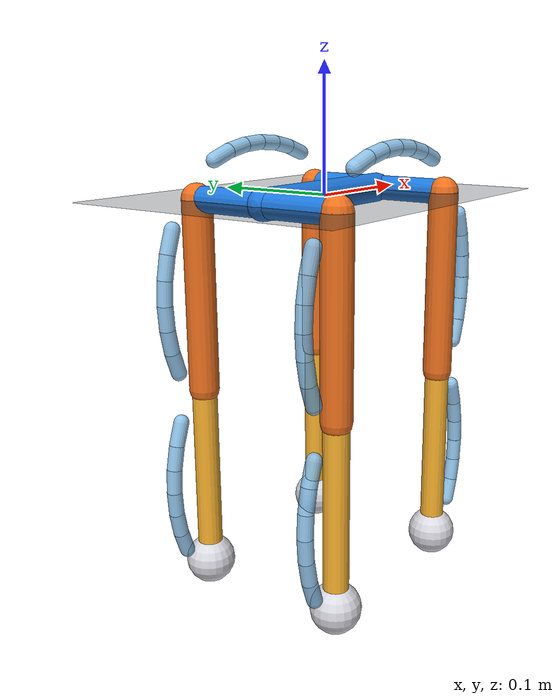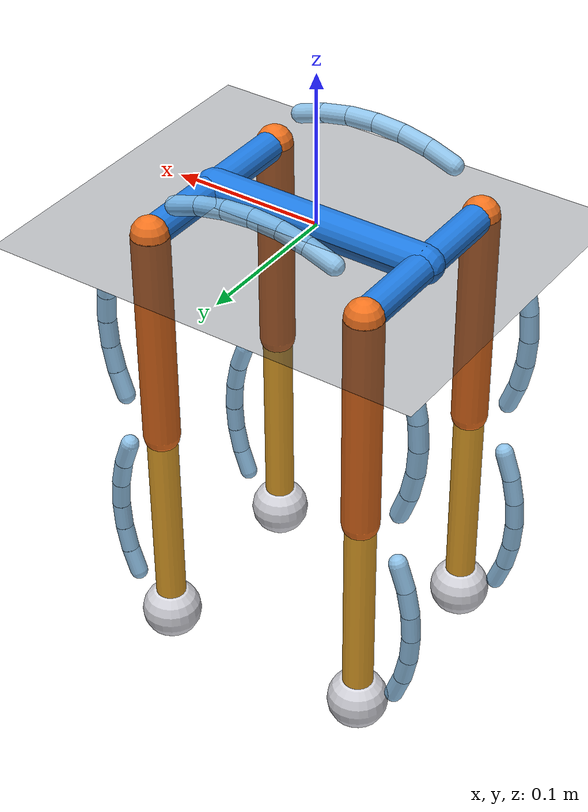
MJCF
<mujoco model="curl_robot_3d">

  <compiler angle="radian" autolimits="true"/>
  <option timestep="0.001" gravity="0 0 -9.81"
          integrator="implicitfast" cone="elliptic"
          iterations="20" ls_iterations="10"/>

  <visual>
    <global azimuth="120" elevation="-12" offwidth="960" offheight="720"/>
    <headlight ambient="0.35 0.35 0.35"
               diffuse="0.65 0.65 0.65"
               specular="0.20 0.20 0.20"/>
  </visual>

  <asset>
    <texture type="skybox" builtin="gradient" rgb1=".18 .23 .30"
             rgb2=".02 .03 .05" width="512" height="512"/>
    <texture name="grid" type="2d" builtin="checker" width="512"
             height="512" rgb1=".18 .22 .27" rgb2=".10 .13 .17"/>
    <material name="ground" texture="grid" texrepeat="1 1"
              texuniform="true" reflectance="0.05"/>
  </asset>

  <default>
    <joint limited="true"/>
    <geom contype="0" conaffinity="1" condim="3"
          friction="0.8 0.02 0.01"
          solref="0.01 1" solimp="0.9 0.95 0.001"/>
    <default class="single_hip_joint">
      <joint damping="0.01"
             armature="0.0016"
             range="-1.12 2.41"/>
    </default>
    <default class="single_knee_joint">
      <joint damping="0.01"
             armature="0.0016"
             range="-0.61 2.69"/>
    </default>
    <default class="single_servo">
      <general forcelimited="true"
               forcerange="-3 3"
               ctrllimited="true"
               gainprm="5 0 0"
               biastype="affine"
               biasprm="0 -5 -0.1"/>
    </default>
    <default class="rolling_shell">
      <geom type="capsule" size="0.006"
            contype="4" conaffinity="7"
            solref="0.003 1" solimp="0.95 0.99 0.001"
            group="1" rgba="0.55 0.78 0.95 0.88"/>
    </default>
    <default class="structure_collision">
      <geom contype="2" conaffinity="7"
            solref="0.003 1" solimp="0.95 0.99 0.001"/>
    </default>
  </default>

  <worldbody>
    <light name="key" directional="true" castshadow="true"
           pos="-1 -2 4" dir="0.25 0.15 -1"
           diffuse="0.85 0.85 0.82" specular="0.20 0.20 0.20"/>
    <light name="fill" directional="true" castshadow="false"
           pos="1 2 3" dir="-0.20 -0.30 -1"
           diffuse="0.30 0.36 0.45" specular="0.05 0.05 0.05"/>
    <camera name="tracking" mode="targetbody" target="torso"
            pos="0.45 -0.55 0.35"/>
    <geom name="floor" type="plane" size="12 6 0.05"
          contype="1" conaffinity="1" material="ground"/>

    <body name="torso" pos="0 0 0">
      <freejoint name="root"/>
      <inertial pos="0.025 0 0.015"
                mass="1.506"
                diaginertia="0.002042720378 0.0085 0.0085"/>
      <geom name="torso_spine_proxy" type="capsule"
            class="structure_collision"
            fromto="-0.075 0 0 0.075 0 0"
            size="0.012"
            rgba="0.12 0.48 0.88 1"/>
      <geom name="front_crossbar_proxy" type="capsule"
            class="structure_collision"
            fromto="0.075 -0.06379 0 0.075 0.06379 0"
            size="0.01"
            rgba="0.12 0.48 0.88 1"/>
      <geom name="rear_crossbar_proxy" type="capsule"
            class="structure_collision"
            fromto="-0.075 -0.06379 0 -0.075 0.06379 0"
            size="0.01"
            rgba="0.12 0.48 0.88 1"/>
      <geom name="torso_left_shell_00" class="rolling_shell"
            fromto="-0.055 0.06379 0.02719654173 -0.03721561714 0.06379 0.03333902023"/>
      <geom name="torso_left_shell_01" class="rolling_shell"
            fromto="-0.03721561714 0.06379 0.03333902023 -0.01877366594 0.06379 0.03706846409"/>
      <geom name="torso_left_shell_02" class="rolling_shell"
            fromto="-0.01877366594 0.06379 0.03706846409 0 0.06379 0.03831897722"/>
      <geom name="torso_left_shell_03" class="rolling_shell"
            fromto="0 0.06379 0.03831897722 0.01877366594 0.06379 0.03706846409"/>
      <geom name="torso_left_shell_04" class="rolling_shell"
            fromto="0.01877366594 0.06379 0.03706846409 0.03721561714 0.06379 0.03333902023"/>
      <geom name="torso_left_shell_05" class="rolling_shell"
            fromto="0.03721561714 0.06379 0.03333902023 0.055 0.06379 0.02719654173"/>
      <geom name="torso_right_shell_00" class="rolling_shell"
            fromto="-0.055 -0.06379 0.02719654173 -0.03721561714 -0.06379 0.03333902023"/>
      <geom name="torso_right_shell_01" class="rolling_shell"
            fromto="-0.03721561714 -0.06379 0.03333902023 -0.01877366594 -0.06379 0.03706846409"/>
      <geom name="torso_right_shell_02" class="rolling_shell"
            fromto="-0.01877366594 -0.06379 0.03706846409 0 -0.06379 0.03831897722"/>
      <geom name="torso_right_shell_03" class="rolling_shell"
            fromto="0 -0.06379 0.03831897722 0.01877366594 -0.06379 0.03706846409"/>
      <geom name="torso_right_shell_04" class="rolling_shell"
            fromto="0.01877366594 -0.06379 0.03706846409 0.03721561714 -0.06379 0.03333902023"/>
      <geom name="torso_right_shell_05" class="rolling_shell"
            fromto="0.03721561714 -0.06379 0.03333902023 0.055 -0.06379 0.02719654173"/>

      <body name="front_left_thigh" pos="0.075 0.06379 0">
        <joint name="front_left_hip" type="hinge" axis="0 -1 0"
               class="single_hip_joint"/>
        <inertial pos="0 0 -0.0573059111"
                  mass="0.366"
                  diaginertia="0.0013365 0.0013365 0.0001"/>
        <geom name="front_left_thigh_proxy" type="capsule"
              class="structure_collision"
              fromto="0 0 0 0 0 -0.15"
              size="0.012"
              rgba="0.95 0.45 0.12 1"/>
        <geom name="front_left_thigh_shell_00" class="rolling_shell"
              fromto="0.02719654173 0 -0.02 0.03333902023 0 -0.03778438286"/>
        <geom name="front_left_thigh_shell_01" class="rolling_shell"
              fromto="0.03333902023 0 -0.03778438286 0.03706846409 0 -0.05622633406"/>
        <geom name="front_left_thigh_shell_02" class="rolling_shell"
              fromto="0.03706846409 0 -0.05622633406 0.03831897722 0 -0.075"/>
        <geom name="front_left_thigh_shell_03" class="rolling_shell"
              fromto="0.03831897722 0 -0.075 0.03706846409 0 -0.09377366594"/>
        <geom name="front_left_thigh_shell_04" class="rolling_shell"
              fromto="0.03706846409 0 -0.09377366594 0.03333902023 0 -0.1122156171"/>
        <geom name="front_left_thigh_shell_05" class="rolling_shell"
              fromto="0.03333902023 0 -0.1122156171 0.02719654173 0 -0.13"/>
        <body name="front_left_shank" pos="0 0 -0.15">
          <joint name="front_left_knee" type="hinge" axis="0 1 0"
                 class="single_knee_joint"/>
          <inertial pos="0 0 -0.0897967059"
                    mass="0.05"
                    diaginertia="7.75375e-05 7.75375e-05 2e-05"/>
          <geom name="front_left_shank_proxy" type="capsule"
                class="structure_collision"
                fromto="0 0 0 0 0 -0.15"
                size="0.01"
                rgba="0.98 0.70 0.18 1"/>
          <geom name="front_left_shank_shell_00" class="rolling_shell"
                fromto="0.02719654173 0 -0.02 0.03333902023 0 -0.03778438286"/>
          <geom name="front_left_shank_shell_01" class="rolling_shell"
                fromto="0.03333902023 0 -0.03778438286 0.03706846409 0 -0.05622633406"/>
          <geom name="front_left_shank_shell_02" class="rolling_shell"
                fromto="0.03706846409 0 -0.05622633406 0.03831897722 0 -0.075"/>
          <geom name="front_left_shank_shell_03" class="rolling_shell"
                fromto="0.03831897722 0 -0.075 0.03706846409 0 -0.09377366594"/>
          <geom name="front_left_shank_shell_04" class="rolling_shell"
                fromto="0.03706846409 0 -0.09377366594 0.03333902023 0 -0.1122156171"/>
          <geom name="front_left_shank_shell_05" class="rolling_shell"
                fromto="0.03333902023 0 -0.1122156171 0.02719654173 0 -0.13"/>
          <geom name="front_left_foot_proxy" type="sphere"
                class="structure_collision"
                pos="0 0 -0.15"
                size="0.01995"
                rgba="0.85 0.85 0.88 1"/>
          <site name="front_left_foot_site"
                pos="0 0 -0.15" size="0.004"/>
        </body>
      </body>
      <body name="front_right_thigh" pos="0.075 -0.06379 0">
        <joint name="front_right_hip" type="hinge" axis="0 -1 0"
               class="single_hip_joint"/>
        <inertial pos="0 0 -0.0573059111"
                  mass="0.366"
                  diaginertia="0.0013365 0.0013365 0.0001"/>
        <geom name="front_right_thigh_proxy" type="capsule"
              class="structure_collision"
              fromto="0 0 0 0 0 -0.15"
              size="0.012"
              rgba="0.95 0.45 0.12 1"/>
        <geom name="front_right_thigh_shell_00" class="rolling_shell"
              fromto="0.02719654173 0 -0.02 0.03333902023 0 -0.03778438286"/>
        <geom name="front_right_thigh_shell_01" class="rolling_shell"
              fromto="0.03333902023 0 -0.03778438286 0.03706846409 0 -0.05622633406"/>
        <geom name="front_right_thigh_shell_02" class="rolling_shell"
              fromto="0.03706846409 0 -0.05622633406 0.03831897722 0 -0.075"/>
        <geom name="front_right_thigh_shell_03" class="rolling_shell"
              fromto="0.03831897722 0 -0.075 0.03706846409 0 -0.09377366594"/>
        <geom name="front_right_thigh_shell_04" class="rolling_shell"
              fromto="0.03706846409 0 -0.09377366594 0.03333902023 0 -0.1122156171"/>
        <geom name="front_right_thigh_shell_05" class="rolling_shell"
              fromto="0.03333902023 0 -0.1122156171 0.02719654173 0 -0.13"/>
        <body name="front_right_shank" pos="0 0 -0.15">
          <joint name="front_right_knee" type="hinge" axis="0 1 0"
                 class="single_knee_joint"/>
          <inertial pos="0 0 -0.0897967059"
                    mass="0.05"
                    diaginertia="7.75375e-05 7.75375e-05 2e-05"/>
          <geom name="front_right_shank_proxy" type="capsule"
                class="structure_collision"
                fromto="0 0 0 0 0 -0.15"
                size="0.01"
                rgba="0.98 0.70 0.18 1"/>
          <geom name="front_right_shank_shell_00" class="rolling_shell"
                fromto="0.02719654173 0 -0.02 0.03333902023 0 -0.03778438286"/>
          <geom name="front_right_shank_shell_01" class="rolling_shell"
                fromto="0.03333902023 0 -0.03778438286 0.03706846409 0 -0.05622633406"/>
          <geom name="front_right_shank_shell_02" class="rolling_shell"
                fromto="0.03706846409 0 -0.05622633406 0.03831897722 0 -0.075"/>
          <geom name="front_right_shank_shell_03" class="rolling_shell"
                fromto="0.03831897722 0 -0.075 0.03706846409 0 -0.09377366594"/>
          <geom name="front_right_shank_shell_04" class="rolling_shell"
                fromto="0.03706846409 0 -0.09377366594 0.03333902023 0 -0.1122156171"/>
          <geom name="front_right_shank_shell_05" class="rolling_shell"
                fromto="0.03333902023 0 -0.1122156171 0.02719654173 0 -0.13"/>
          <geom name="front_right_foot_proxy" type="sphere"
                class="structure_collision"
                pos="0 0 -0.15"
                size="0.01995"
                rgba="0.85 0.85 0.88 1"/>
          <site name="front_right_foot_site"
                pos="0 0 -0.15" size="0.004"/>
        </body>
      </body>
      <body name="rear_left_thigh" pos="-0.075 0.06379 0">
        <joint name="rear_left_hip" type="hinge" axis="0 1 0"
               class="single_hip_joint"/>
        <inertial pos="0 0 -0.0573059111"
                  mass="0.366"
                  diaginertia="0.0013365 0.0013365 0.0001"/>
        <geom name="rear_left_thigh_proxy" type="capsule"
              class="structure_collision"
              fromto="0 0 0 0 0 -0.15"
              size="0.012"
              rgba="0.95 0.45 0.12 1"/>
        <geom name="rear_left_thigh_shell_00" class="rolling_shell"
              fromto="-0.02719654173 0 -0.02 -0.03333902023 0 -0.03778438286"/>
        <geom name="rear_left_thigh_shell_01" class="rolling_shell"
              fromto="-0.03333902023 0 -0.03778438286 -0.03706846409 0 -0.05622633406"/>
        <geom name="rear_left_thigh_shell_02" class="rolling_shell"
              fromto="-0.03706846409 0 -0.05622633406 -0.03831897722 0 -0.075"/>
        <geom name="rear_left_thigh_shell_03" class="rolling_shell"
              fromto="-0.03831897722 0 -0.075 -0.03706846409 0 -0.09377366594"/>
        <geom name="rear_left_thigh_shell_04" class="rolling_shell"
              fromto="-0.03706846409 0 -0.09377366594 -0.03333902023 0 -0.1122156171"/>
        <geom name="rear_left_thigh_shell_05" class="rolling_shell"
              fromto="-0.03333902023 0 -0.1122156171 -0.02719654173 0 -0.13"/>
        <body name="rear_left_shank" pos="0 0 -0.15">
          <joint name="rear_left_knee" type="hinge" axis="0 -1 0"
                 class="single_knee_joint"/>
          <inertial pos="0 0 -0.0897967059"
                    mass="0.05"
                    diaginertia="7.75375e-05 7.75375e-05 2e-05"/>
          <geom name="rear_left_shank_proxy" type="capsule"
                class="structure_collision"
                fromto="0 0 0 0 0 -0.15"
                size="0.01"
                rgba="0.98 0.70 0.18 1"/>
          <geom name="rear_left_shank_shell_00" class="rolling_shell"
                fromto="-0.02719654173 0 -0.02 -0.03333902023 0 -0.03778438286"/>
          <geom name="rear_left_shank_shell_01" class="rolling_shell"
                fromto="-0.03333902023 0 -0.03778438286 -0.03706846409 0 -0.05622633406"/>
          <geom name="rear_left_shank_shell_02" class="rolling_shell"
                fromto="-0.03706846409 0 -0.05622633406 -0.03831897722 0 -0.075"/>
          <geom name="rear_left_shank_shell_03" class="rolling_shell"
                fromto="-0.03831897722 0 -0.075 -0.03706846409 0 -0.09377366594"/>
          <geom name="rear_left_shank_shell_04" class="rolling_shell"
                fromto="-0.03706846409 0 -0.09377366594 -0.03333902023 0 -0.1122156171"/>
          <geom name="rear_left_shank_shell_05" class="rolling_shell"
                fromto="-0.03333902023 0 -0.1122156171 -0.02719654173 0 -0.13"/>
          <geom name="rear_left_foot_proxy" type="sphere"
                class="structure_collision"
                pos="0 0 -0.15"
                size="0.01995"
                rgba="0.85 0.85 0.88 1"/>
          <site name="rear_left_foot_site"
                pos="0 0 -0.15" size="0.004"/>
        </body>
      </body>
      <body name="rear_right_thigh" pos="-0.075 -0.06379 0">
        <joint name="rear_right_hip" type="hinge" axis="0 1 0"
               class="single_hip_joint"/>
        <inertial pos="0 0 -0.0573059111"
                  mass="0.366"
                  diaginertia="0.0013365 0.0013365 0.0001"/>
        <geom name="rear_right_thigh_proxy" type="capsule"
              class="structure_collision"
              fromto="0 0 0 0 0 -0.15"
              size="0.012"
              rgba="0.95 0.45 0.12 1"/>
        <geom name="rear_right_thigh_shell_00" class="rolling_shell"
              fromto="-0.02719654173 0 -0.02 -0.03333902023 0 -0.03778438286"/>
        <geom name="rear_right_thigh_shell_01" class="rolling_shell"
              fromto="-0.03333902023 0 -0.03778438286 -0.03706846409 0 -0.05622633406"/>
        <geom name="rear_right_thigh_shell_02" class="rolling_shell"
              fromto="-0.03706846409 0 -0.05622633406 -0.03831897722 0 -0.075"/>
        <geom name="rear_right_thigh_shell_03" class="rolling_shell"
              fromto="-0.03831897722 0 -0.075 -0.03706846409 0 -0.09377366594"/>
        <geom name="rear_right_thigh_shell_04" class="rolling_shell"
              fromto="-0.03706846409 0 -0.09377366594 -0.03333902023 0 -0.1122156171"/>
        <geom name="rear_right_thigh_shell_05" class="rolling_shell"
              fromto="-0.03333902023 0 -0.1122156171 -0.02719654173 0 -0.13"/>
        <body name="rear_right_shank" pos="0 0 -0.15">
          <joint name="rear_right_knee" type="hinge" axis="0 -1 0"
                 class="single_knee_joint"/>
          <inertial pos="0 0 -0.0897967059"
                    mass="0.05"
                    diaginertia="7.75375e-05 7.75375e-05 2e-05"/>
          <geom name="rear_right_shank_proxy" type="capsule"
                class="structure_collision"
                fromto="0 0 0 0 0 -0.15"
                size="0.01"
                rgba="0.98 0.70 0.18 1"/>
          <geom name="rear_right_shank_shell_00" class="rolling_shell"
                fromto="-0.02719654173 0 -0.02 -0.03333902023 0 -0.03778438286"/>
          <geom name="rear_right_shank_shell_01" class="rolling_shell"
                fromto="-0.03333902023 0 -0.03778438286 -0.03706846409 0 -0.05622633406"/>
          <geom name="rear_right_shank_shell_02" class="rolling_shell"
                fromto="-0.03706846409 0 -0.05622633406 -0.03831897722 0 -0.075"/>
          <geom name="rear_right_shank_shell_03" class="rolling_shell"
                fromto="-0.03831897722 0 -0.075 -0.03706846409 0 -0.09377366594"/>
          <geom name="rear_right_shank_shell_04" class="rolling_shell"
                fromto="-0.03706846409 0 -0.09377366594 -0.03333902023 0 -0.1122156171"/>
          <geom name="rear_right_shank_shell_05" class="rolling_shell"
                fromto="-0.03333902023 0 -0.1122156171 -0.02719654173 0 -0.13"/>
          <geom name="rear_right_foot_proxy" type="sphere"
                class="structure_collision"
                pos="0 0 -0.15"
                size="0.01995"
                rgba="0.85 0.85 0.88 1"/>
          <site name="rear_right_foot_site"
                pos="0 0 -0.15" size="0.004"/>
        </body>
      </body>
    </body>
  </worldbody>

  <contact>
    <pair name="left_foot_pair"
          geom1="front_left_foot_proxy" geom2="rear_left_foot_proxy"
          condim="3" friction="0.8 0.02 0.01"
          solref="0.002 1" solimp="0.97 0.995 0.001"/>
    <pair name="right_foot_pair"
          geom1="front_right_foot_proxy" geom2="rear_right_foot_proxy"
          condim="3" friction="0.8 0.02 0.01"
          solref="0.002 1" solimp="0.97 0.995 0.001"/>
  </contact>

  <actuator>
    <general name="front_left_hip_servo" joint="front_left_hip"
             class="single_servo"
             ctrlrange="-1.12 2.41"/>
    <general name="front_left_knee_servo" joint="front_left_knee"
             class="single_servo"
             ctrlrange="-0.61 2.69"/>
    <general name="front_right_hip_servo" joint="front_right_hip"
             class="single_servo"
             ctrlrange="-1.12 2.41"/>
    <general name="front_right_knee_servo" joint="front_right_knee"
             class="single_servo"
             ctrlrange="-0.61 2.69"/>
    <general name="rear_left_hip_servo" joint="rear_left_hip"
             class="single_servo"
             ctrlrange="-1.12 2.41"/>
    <general name="rear_left_knee_servo" joint="rear_left_knee"
             class="single_servo"
             ctrlrange="-0.61 2.69"/>
    <general name="rear_right_hip_servo" joint="rear_right_hip"
             class="single_servo"
             ctrlrange="-1.12 2.41"/>
    <general name="rear_right_knee_servo" joint="rear_right_knee"
             class="single_servo"
             ctrlrange="-0.61 2.69"/>
  </actuator>

  <sensor>
    <framequat name="torso_quat" objtype="body" objname="torso"/>
    <framepos name="torso_position" objtype="body" objname="torso"/>
    <framelinvel name="torso_velocity" objtype="body" objname="torso"/>
    <frameangvel name="torso_angular_velocity" objtype="body" objname="torso"/>
    <jointpos name="front_left_hip_position" joint="front_left_hip"/>
    <jointpos name="front_left_knee_position" joint="front_left_knee"/>
    <jointpos name="front_right_hip_position" joint="front_right_hip"/>
    <jointpos name="front_right_knee_position" joint="front_right_knee"/>
    <jointpos name="rear_left_hip_position" joint="rear_left_hip"/>
    <jointpos name="rear_left_knee_position" joint="rear_left_knee"/>
    <jointpos name="rear_right_hip_position" joint="rear_right_hip"/>
    <jointpos name="rear_right_knee_position" joint="rear_right_knee"/>
  </sensor>

  <keyframe>
    <key name="open"
         qpos="0 0 0.31995 1 0 0 0 0 0 0 0 0 0 0 0"
         ctrl="0 0 0 0 0 0 0 0"/>
    <key name="stand"
         qpos="0 0 0.3086936221 1 0 0 0 0.33532733 0.53234438 0.33532733 0.53234438 0.28239372 0.54939539 0.28239372 0.54939539"
         ctrl="0.33532733 0.53234438 0.33532733 0.53234438 0.28239372 0.54939539 0.28239372 0.54939539"/>
    <key name="compact"
         qpos="0 0 0.2731413822 1 0 0 0 0.3141592654 1.05650322 0.3141592654 1.05650322 0.3141592654 1.05650322 0.3141592654 1.05650322"
         ctrl="0.3141592654 1.05650322 0.3141592654 1.05650322 0.3141592654 1.05650322 0.3141592654 1.05650322"/>
  </keyframe>
</mujoco>
